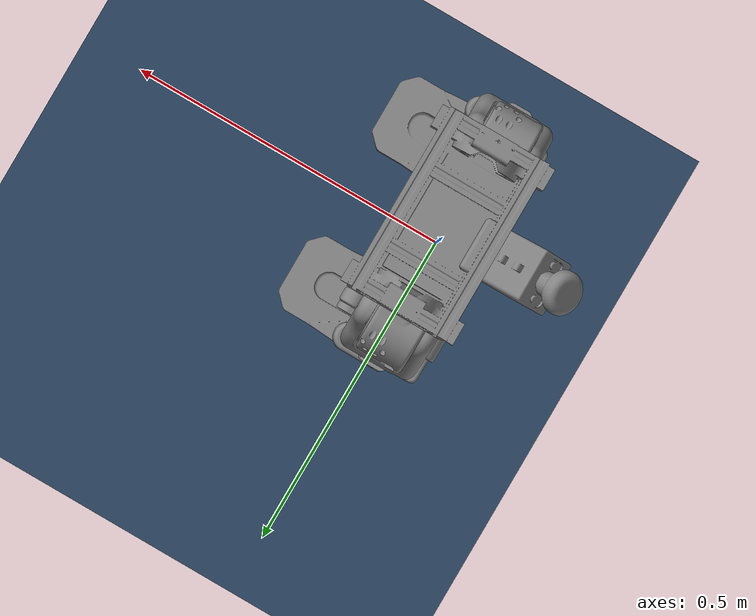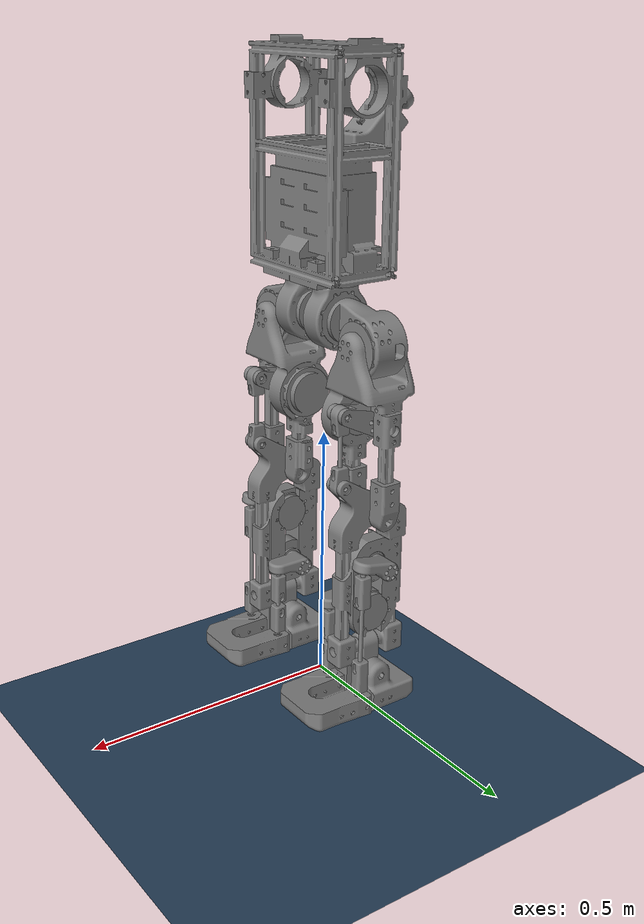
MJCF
<?xml version="1.0"?>
<mujoco model="robonex_edu scene">
  <include file="robonex_limits.xml"/>

  <statistic center="0 0 0.6" extent="1.2"/>

  <visual>
    <headlight diffuse="0.6 0.6 0.6" ambient="0.3 0.3 0.3" specular="0 0 0"/>
    <rgba haze="0.15 0.25 0.35 1"/>
    <global azimuth="140" elevation="-20"/>
  </visual>

  <asset>
    <texture type="skybox" builtin="gradient" rgb1="0.3 0.5 0.7" rgb2="0 0 0" width="512" height="3072"/>
    <texture type="2d" name="groundplane" builtin="checker" mark="edge" rgb1="0.2 0.3 0.4" rgb2="0.1 0.2 0.3"
      markrgb="0.8 0.8 0.8" width="300" height="300"/>
    <material name="groundplane" texture="groundplane" texuniform="true" texrepeat="5 5" reflectance="0.2"/>
  </asset>

  <worldbody>
    <light pos="0 0 3" dir="0 0 -1" directional="true"/>
    <geom name="floor" size="0 0 0.05" type="plane" material="groundplane" condim="3" contype="1" conaffinity="1" friction="0.6 0.6 0.001" solref="0.002 1" solimp="0.99 0.9999 0.0001"/>
  </worldbody>
</mujoco>

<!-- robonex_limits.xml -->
<mujoco model="robonex_edu">
  <compiler angle="radian" meshdir="../../../meshes" autolimits="true"/>
  <option timestep="0.001" integrator="implicitfast" cone="elliptic" impratio="10"/>

  <default>
    <joint damping="0.01" armature="0"/>
    <default class="passive">
      <joint damping="0.01" armature="0"/>
    </default>
    <default class="act">
      <joint armature="0"/>
    </default>
    <default class="visual">
      <geom group="2" contype="0" conaffinity="0" density="0"/>
    </default>
    <default class="collision">
      <geom group="3" contype="1" conaffinity="1" condim="3" density="0" rgba="0.6 0.6 0.6 0.4" solref="0.002 1" solimp="0.99 0.9999 0.0001"/>
    </default>
    <default class="motor">
      <position kp="40" kv="2"/>
    </default>
  </default>

  <asset>
    <mesh name="base_link" file="base_link.stl" scale="0.001 0.001 0.001"/>
    <mesh name="l_ankle_coupler_link_a" file="l_ankle_coupler_link_a.stl" scale="0.001 0.001 0.001"/>
    <mesh name="l_ankle_coupler_link_b" file="l_ankle_coupler_link_b.stl" scale="0.001 0.001 0.001"/>
    <mesh name="l_ankle_crank_link_a" file="l_ankle_crank_link_a.stl" scale="0.001 0.001 0.001"/>
    <mesh name="l_ankle_crank_link_b" file="l_ankle_crank_link_b.stl" scale="0.001 0.001 0.001"/>
    <mesh name="l_ankle_link" file="l_ankle_link.stl" scale="0.001 0.001 0.001"/>
    <mesh name="l_foot" file="l_foot.stl" scale="0.001 0.001 0.001"/>
    <mesh name="l_hip_pitch_link" file="l_hip_pitch_link.stl" scale="0.001 0.001 0.001"/>
    <mesh name="l_hip_roll_link" file="l_hip_roll_link.stl" scale="0.001 0.001 0.001"/>
    <mesh name="l_hip_yaw_link" file="l_hip_yaw_link.stl" scale="0.001 0.001 0.001"/>
    <mesh name="l_knee_coupler_link" file="l_knee_coupler_link.stl" scale="0.001 0.001 0.001"/>
    <mesh name="l_knee_crank_link" file="l_knee_crank_link.stl" scale="0.001 0.001 0.001"/>
    <mesh name="l_knee_link" file="l_knee_link.stl" scale="0.001 0.001 0.001"/>
    <mesh name="r_ankle_coupler_link_a" file="r_ankle_coupler_link_a.stl" scale="0.001 0.001 0.001"/>
    <mesh name="r_ankle_coupler_link_b" file="r_ankle_coupler_link_b.stl" scale="0.001 0.001 0.001"/>
    <mesh name="r_ankle_crank_link_a" file="r_ankle_crank_link_a.stl" scale="0.001 0.001 0.001"/>
    <mesh name="r_ankle_crank_link_b" file="r_ankle_crank_link_b.stl" scale="0.001 0.001 0.001"/>
    <mesh name="r_ankle_link" file="r_ankle_link.stl" scale="0.001 0.001 0.001"/>
    <mesh name="r_foot" file="r_foot.stl" scale="0.001 0.001 0.001"/>
    <mesh name="r_hip_pitch_link" file="r_hip_pitch_link.stl" scale="0.001 0.001 0.001"/>
    <mesh name="r_hip_roll_link" file="r_hip_roll_link.stl" scale="0.001 0.001 0.001"/>
    <mesh name="r_hip_yaw_link" file="r_hip_yaw_link.stl" scale="0.001 0.001 0.001"/>
    <mesh name="r_knee_coupler_link" file="r_knee_coupler_link.stl" scale="0.001 0.001 0.001"/>
    <mesh name="r_knee_crank_link" file="r_knee_crank_link.stl" scale="0.001 0.001 0.001"/>
    <mesh name="r_knee_link" file="r_knee_link.stl" scale="0.001 0.001 0.001"/>
    <mesh name="rs02_l_ankle_a" file="rs02_l_ankle_a.stl" scale="0.001 0.001 0.001"/>
    <mesh name="rs02_l_ankle_b" file="rs02_l_ankle_b.stl" scale="0.001 0.001 0.001"/>
    <mesh name="rs02_l_hip_yaw" file="rs02_l_hip_yaw.stl" scale="0.001 0.001 0.001"/>
    <mesh name="rs02_r_ankle_a" file="rs02_r_ankle_a.stl" scale="0.001 0.001 0.001"/>
    <mesh name="rs02_r_ankle_b" file="rs02_r_ankle_b.stl" scale="0.001 0.001 0.001"/>
    <mesh name="rs02_r_hip_yaw" file="rs02_r_hip_yaw.stl" scale="0.001 0.001 0.001"/>
    <mesh name="rs03_l_hip_pitch" file="rs03_l_hip_pitch.stl" scale="0.001 0.001 0.001"/>
    <mesh name="rs03_l_hip_roll" file="rs03_l_hip_roll.stl" scale="0.001 0.001 0.001"/>
    <mesh name="rs03_l_knee" file="rs03_l_knee.stl" scale="0.001 0.001 0.001"/>
    <mesh name="rs03_r_hip_pitch" file="rs03_r_hip_pitch.stl" scale="0.001 0.001 0.001"/>
    <mesh name="rs03_r_hip_roll" file="rs03_r_hip_roll.stl" scale="0.001 0.001 0.001"/>
    <mesh name="rs03_r_knee" file="rs03_r_knee.stl" scale="0.001 0.001 0.001"/>
  </asset>

  <worldbody>
    <body name="base_link" pos="0 0 0.9549">
      <freejoint name="root"/>
      <inertial pos="0.001029 8e-06 -0.014494" mass="7.56218" fullinertia="0.10985951 0.09654826 0.04686643 1.168e-05 0.00911344 -4.178e-05"/>
      <geom type="mesh" mesh="base_link" pos="0 0 0" class="visual"/>
      <geom type="mesh" mesh="base_link" pos="0 0 0" class="collision"/>
      <geom type="mesh" mesh="rs02_l_hip_yaw" pos="0 0 0" class="visual"/>
      <geom type="mesh" mesh="rs02_l_hip_yaw" pos="0 0 0" class="collision"/>
      <geom type="mesh" mesh="rs02_r_hip_yaw" pos="0 0 0" class="visual"/>
      <geom type="mesh" mesh="rs02_r_hip_yaw" pos="0 0 0" class="collision"/>
      <body name="l_hip_yaw_link" pos="0.009587 0.043073 -0.157994">
        <joint name="l_hip_yaw_joint" type="hinge" axis="0 0 1" range="-1.65806 1.65806" armature="0.0042" frictionloss="0" damping="0" class="act"/>
        <inertial pos="-3.5e-05 0.001434 -0.060089" mass="1.05799" fullinertia="0.0012034 0.00167068 0.00111414 -7.1e-07 -7.2e-07 1.735e-05"/>
        <geom type="mesh" mesh="l_hip_yaw_link" pos="0 0 0" class="visual"/>
        <geom type="mesh" mesh="l_hip_yaw_link" pos="0 0 0" class="collision"/>
        <geom type="mesh" mesh="rs03_l_hip_pitch" pos="0 0 0" class="visual"/>
        <geom type="mesh" mesh="rs03_l_hip_pitch" pos="0 0 0" class="collision"/>
        <body name="l_hip_pitch_link" pos="2e-06 0.02575 -0.062">
          <joint name="l_hip_pitch_joint" type="hinge" axis="0 -1 0" range="-1.74533 1.74533" armature="0.02" frictionloss="0" damping="0" class="act"/>
          <inertial pos="-0.005442 0.060333 -0.031597" mass="1.18163" fullinertia="0.00199283 0.00152652 0.00145115 2.217e-05 -1.266e-05 0.0001316"/>
          <geom type="mesh" mesh="l_hip_pitch_link" pos="0 0 0" class="visual"/>
          <geom type="mesh" mesh="l_hip_pitch_link" pos="0 0 0" class="collision"/>
          <geom type="mesh" mesh="rs03_l_hip_roll" pos="0 0 0" class="visual"/>
          <geom type="mesh" mesh="rs03_l_hip_roll" pos="0 0 0" class="collision"/>
          <body name="l_hip_roll_link" pos="0.0225 0.062699 -0.034">
            <joint name="l_hip_roll_joint" type="hinge" axis="-1 0 0" range="-2.14676 0.453786" armature="0.02" frictionloss="0" damping="0" class="act"/>
            <inertial pos="-0.034699 -0.027552 -0.132599" mass="1.7079" fullinertia="0.01098964 0.00975951 0.00409591 -1.176e-05 -1.512e-05 -0.00025731"/>
            <geom type="mesh" mesh="l_hip_roll_link" pos="0 0 0" class="visual"/>
            <geom type="mesh" mesh="l_hip_roll_link" pos="0 0 0" class="collision"/>
            <geom type="mesh" mesh="rs03_l_knee" pos="0 0 0" class="visual"/>
            <geom type="mesh" mesh="rs03_l_knee" pos="0 0 0" class="collision"/>
            <body name="l_knee_link" pos="-0.034799 0.0029 -0.312746">
              <joint name="l_knee_joint" type="hinge" axis="0 -1 0" range="-3.14159 3.14159" class="passive"/>
              <inertial pos="-0.00084 -7.5e-05 -0.127387" mass="1.48699" fullinertia="0.0102151 0.01165071 0.0018731 -1.42e-06 -0.00032066 -2.783e-05"/>
              <geom type="mesh" mesh="l_knee_link" pos="0 0 0" class="visual"/>
              <geom type="mesh" mesh="l_knee_link" pos="0 0 0" class="collision"/>
              <geom type="mesh" mesh="rs02_l_ankle_a" pos="0 0 0" class="visual"/>
              <geom type="mesh" mesh="rs02_l_ankle_a" pos="0 0 0" class="collision"/>
              <geom type="mesh" mesh="rs02_l_ankle_b" pos="0 0 0" class="visual"/>
              <geom type="mesh" mesh="rs02_l_ankle_b" pos="0 0 0" class="collision"/>
              <body name="l_ankle_crank_link_a" pos="-0.001915 0.0229 -0.09521">
                <joint name="l_ankle_upper_joint" type="hinge" axis="0 -1 0" range="-0.610865 0.575959" armature="0.0042" frictionloss="0" damping="0" class="act"/>
                <inertial pos="0.02027 0.024517 0.008498" mass="0.097699" fullinertia="2.72e-05 6.048e-05 6.413e-05 -3.53e-06 -1.569e-05 -1.5e-06"/>
                <geom type="mesh" mesh="l_ankle_crank_link_a" pos="0 0 0" class="visual"/>
                <geom type="mesh" mesh="l_ankle_crank_link_a" pos="0 0 0" class="collision"/>
                <body name="l_ankle_coupler_link_b" pos="0.048892 0.0263 0.010482">
                  <joint name="l_ankle_coupler_joint_b_x" type="hinge" axis="1 0 0" range="-0.261799 0.261799" limited="true" solreflimit="0.004 1" solimplimit="0.99 0.9999 0.0001" class="passive"/>
                  <joint name="l_ankle_coupler_joint_b_y" type="hinge" axis="0 1 0" class="passive"/>
                  <joint name="l_ankle_coupler_joint_b_z" type="hinge" axis="0 0 1" range="-0.261799 0.261799" limited="true" solreflimit="0.004 1" solimplimit="0.99 0.9999 0.0001" class="passive"/>
                  <inertial pos="0.001566 2e-06 -0.128991" mass="0.0954" fullinertia="0.00073964 0.0007393 8.39e-06 0 8.88e-06 1e-08"/>
                  <geom type="mesh" mesh="l_ankle_coupler_link_b" pos="0 0 0" class="visual"/>
                  <geom type="mesh" mesh="l_ankle_coupler_link_b" pos="0 0 0" class="collision"/>
                </body>
              </body>
              <body name="l_ankle_crank_link_b" pos="-0.001915 -0.0231 -0.19621">
                <joint name="l_ankle_lower_joint" type="hinge" axis="0 1 0" range="-0.610865 0.575959" armature="0.0042" frictionloss="0" damping="0" class="act"/>
                <inertial pos="0.021459 -0.024511 0.004277" mass="0.0977" fullinertia="2.258e-05 6.038e-05 6.874e-05 3.75e-06 -7.25e-06 7.5e-07"/>
                <geom type="mesh" mesh="l_ankle_crank_link_b" pos="0 0 0" class="visual"/>
                <geom type="mesh" mesh="l_ankle_crank_link_b" pos="0 0 0" class="collision"/>
                <body name="l_ankle_coupler_link_a" pos="0.049971 -0.025702 0.000486">
                  <joint name="l_ankle_coupler_joint_a_x" type="hinge" axis="1 0 0" range="-0.261799 0.261799" limited="true" solreflimit="0.004 1" solimplimit="0.99 0.9999 0.0001" class="passive"/>
                  <joint name="l_ankle_coupler_joint_a_y" type="hinge" axis="0 1 0" class="passive"/>
                  <joint name="l_ankle_coupler_joint_a_z" type="hinge" axis="0 0 1" range="-0.261799 0.261799" limited="true" solreflimit="0.004 1" solimplimit="0.99 0.9999 0.0001" class="passive"/>
                  <inertial pos="0.001031 -0.000197 -0.073492" mass="0.0618" fullinertia="0.00010098 0.00010065 5.7e-06 0 1.33e-06 -2.6e-07"/>
                  <geom type="mesh" mesh="l_ankle_coupler_link_a" pos="0 0 0" class="visual"/>
                  <geom type="mesh" mesh="l_ankle_coupler_link_a" pos="0 0 0" class="collision"/>
                </body>
              </body>
              <body name="l_ankle_link" pos="0.000114 -2e-06 -0.26671">
                <joint name="l_ankle_roll_joint" type="hinge" axis="1 0 0" range="-3.14159 3.14159" class="passive"/>
                <inertial pos="0 1e-06 -0.024999" mass="0.106" fullinertia="7.201e-05 7.201e-05 2.63e-05 0 0 0"/>
                <geom type="mesh" mesh="l_ankle_link" pos="0 0 0" class="visual"/>
                <geom type="mesh" mesh="l_ankle_link" pos="0 0 0" class="collision"/>
                <body name="l_foot" pos="-4e-06 0.000276 -0.049999">
                  <joint name="l_ankle_pitch_joint" type="hinge" axis="0 -1 0" range="-3.14159 3.14159" class="passive"/>
                  <inertial pos="0.03641 -0.000198 -0.039754" mass="0.833001" fullinertia="0.00152051 0.00436638 0.00529529 2.25e-06 0.00016013 -2.66e-06"/>
                  <geom type="mesh" mesh="l_foot" pos="0 0 0" class="visual"/>
                  <geom type="mesh" mesh="l_foot" pos="0 0 0" class="collision" friction="0.6 0.6 0.001"/>
                </body>
              </body>
            </body>
            <body name="l_knee_crank_link" pos="-0.034801 -0.0286 -0.13775">
              <joint name="l_knee_pitch_joint" type="hinge" axis="0 -1 0" range="-1.36136 0.261799" armature="0.02" frictionloss="0" damping="0" class="act"/>
              <inertial pos="0.019335 0.02899 0.007124" mass="0.15261" fullinertia="6.247e-05 0.00012321 0.00012195 -8.15e-06 -2.537e-05 -3e-06"/>
              <geom type="mesh" mesh="l_knee_crank_link" pos="0 0 0" class="visual"/>
              <geom type="mesh" mesh="l_knee_crank_link" pos="0 0 0" class="collision"/>
              <body name="l_knee_coupler_link" pos="0.065782 0.0315 0.023944">
                <joint name="l_knee_coupler_joint_a" type="hinge" axis="0 -1 0" range="-3.14159 3.14159" class="passive"/>
                <inertial pos="-3e-06 0 -0.067002" mass="0.027601" fullinertia="8.761e-05 8.882e-05 2.91e-06 0 0 0"/>
                <geom type="mesh" mesh="l_knee_coupler_link" pos="0 0 0" class="visual"/>
                <geom type="mesh" mesh="l_knee_coupler_link" pos="0 0 0" class="collision"/>
              </body>
            </body>
          </body>
        </body>
      </body>
      <body name="r_hip_yaw_link" pos="0.009587 -0.042927 -0.157994">
        <joint name="r_hip_yaw_joint" type="hinge" axis="0 0 1" range="-1.65806 1.65806" armature="0.0042" frictionloss="0" damping="0" class="act"/>
        <inertial pos="3.7e-05 -0.001434 -0.060089" mass="1.05799" fullinertia="0.0012034 0.00167069 0.00111414 -7.1e-07 7.2e-07 -1.735e-05"/>
        <geom type="mesh" mesh="r_hip_yaw_link" pos="0 0 0" class="visual"/>
        <geom type="mesh" mesh="r_hip_yaw_link" pos="0 0 0" class="collision"/>
        <geom type="mesh" mesh="rs03_r_hip_pitch" pos="0 0 0" class="visual"/>
        <geom type="mesh" mesh="rs03_r_hip_pitch" pos="0 0 0" class="collision"/>
        <body name="r_hip_pitch_link" pos="1e-06 -0.02575 -0.062">
          <joint name="r_hip_pitch_joint" type="hinge" axis="0 1 0" range="-1.74533 1.74533" armature="0.02" frictionloss="0" damping="0" class="act"/>
          <inertial pos="-0.005441 -0.060269 -0.031597" mass="1.18162" fullinertia="0.00199244 0.0015265 0.00145077 -2.103e-05 -1.266e-05 -0.00013011"/>
          <geom type="mesh" mesh="r_hip_pitch_link" pos="0 0 0" class="visual"/>
          <geom type="mesh" mesh="r_hip_pitch_link" pos="0 0 0" class="collision"/>
          <geom type="mesh" mesh="rs03_r_hip_roll" pos="0 0 0" class="visual"/>
          <geom type="mesh" mesh="rs03_r_hip_roll" pos="0 0 0" class="collision"/>
          <body name="r_hip_roll_link" pos="0.022501 -0.0627 -0.034">
            <joint name="r_hip_roll_joint" type="hinge" axis="-1 0 0" range="-0.453786 2.14676" armature="0.02" frictionloss="0" damping="0" class="act"/>
            <inertial pos="-0.034699 0.027552 -0.132644" mass="1.70788" fullinertia="0.01098902 0.00976012 0.00409465 1.171e-05 -1.643e-05 0.00026012"/>
            <geom type="mesh" mesh="r_hip_roll_link" pos="0 0 0" class="visual"/>
            <geom type="mesh" mesh="r_hip_roll_link" pos="0 0 0" class="collision"/>
            <geom type="mesh" mesh="rs03_r_knee" pos="0 0 0" class="visual"/>
            <geom type="mesh" mesh="rs03_r_knee" pos="0 0 0" class="collision"/>
            <body name="r_knee_link" pos="-0.034799 -0.002899 -0.312746">
              <joint name="r_knee_joint" type="hinge" axis="0 1 0" range="-3.14159 3.14159" class="passive"/>
              <inertial pos="-0.000866 -1e-06 -0.12742" mass="1.48699" fullinertia="0.01021209 0.01164668 0.00187201 -5e-07 -0.00032231 2.312e-05"/>
              <geom type="mesh" mesh="r_knee_link" pos="0 0 0" class="visual"/>
              <geom type="mesh" mesh="r_knee_link" pos="0 0 0" class="collision"/>
              <geom type="mesh" mesh="rs02_r_ankle_a" pos="0 0 0" class="visual"/>
              <geom type="mesh" mesh="rs02_r_ankle_a" pos="0 0 0" class="collision"/>
              <geom type="mesh" mesh="rs02_r_ankle_b" pos="0 0 0" class="visual"/>
              <geom type="mesh" mesh="rs02_r_ankle_b" pos="0 0 0" class="collision"/>
              <body name="r_ankle_crank_link_a" pos="-0.001936 0.023 -0.196208">
                <joint name="r_ankle_lower_joint" type="hinge" axis="0 -1 0" range="-0.575959 0.610865" armature="0.0042" frictionloss="0" damping="0" class="act"/>
                <inertial pos="0.02156 0.024517 0.004268" mass="0.097699" fullinertia="2.252e-05 6.047e-05 6.881e-05 -3.76e-06 -7.2e-06 -7.4e-07"/>
                <geom type="mesh" mesh="r_ankle_crank_link_a" pos="0 0 0" class="visual"/>
                <geom type="mesh" mesh="r_ankle_crank_link_a" pos="0 0 0" class="collision"/>
                <body name="r_ankle_coupler_link_a" pos="0.050001 0.0263 0.000484">
                  <joint name="r_ankle_coupler_joint_a_x" type="hinge" axis="1 0 0" range="-0.261799 0.261799" limited="true" solreflimit="0.004 1" solimplimit="0.99 0.9999 0.0001" class="passive"/>
                  <joint name="r_ankle_coupler_joint_a_y" type="hinge" axis="0 1 0" class="passive"/>
                  <joint name="r_ankle_coupler_joint_a_z" type="hinge" axis="0 0 1" range="-0.261799 0.261799" limited="true" solreflimit="0.004 1" solimplimit="0.99 0.9999 0.0001" class="passive"/>
                  <inertial pos="0.001024 -5e-05 -0.073492" mass="0.0618" fullinertia="0.00010064 0.000101 5.69e-06 -1e-08 1.32e-06 -6e-08"/>
                  <geom type="mesh" mesh="r_ankle_coupler_link_a" pos="0 0 0" class="visual"/>
                  <geom type="mesh" mesh="r_ankle_coupler_link_a" pos="0 0 0" class="collision"/>
                </body>
              </body>
              <body name="r_ankle_crank_link_b" pos="-0.001936 -0.023 -0.095208">
                <joint name="r_ankle_upper_joint" type="hinge" axis="0 1 0" range="-0.575959 0.610865" armature="0.0042" frictionloss="0" damping="0" class="act"/>
                <inertial pos="0.020168 -0.024511 0.008483" mass="0.0977" fullinertia="2.727e-05 6.04e-05 6.405e-05 3.52e-06 -1.571e-05 1.49e-06"/>
                <geom type="mesh" mesh="r_ankle_crank_link_b" pos="0 0 0" class="visual"/>
                <geom type="mesh" mesh="r_ankle_crank_link_b" pos="0 0 0" class="collision"/>
                <body name="r_ankle_coupler_link_b" pos="0.048862 -0.025702 0.010477">
                  <joint name="r_ankle_coupler_joint_b_x" type="hinge" axis="1 0 0" range="-0.261799 0.261799" limited="true" solreflimit="0.004 1" solimplimit="0.99 0.9999 0.0001" class="passive"/>
                  <joint name="r_ankle_coupler_joint_b_y" type="hinge" axis="0 1 0" class="passive"/>
                  <joint name="r_ankle_coupler_joint_b_z" type="hinge" axis="0 0 1" range="-0.261799 0.261799" limited="true" solreflimit="0.004 1" solimplimit="0.99 0.9999 0.0001" class="passive"/>
                  <inertial pos="0.001594 -0.000249 -0.12899" mass="0.0954" fullinertia="0.00073964 0.0007393 8.39e-06 2e-08 9.04e-06 -1.41e-06"/>
                  <geom type="mesh" mesh="r_ankle_coupler_link_b" pos="0 0 0" class="visual"/>
                  <geom type="mesh" mesh="r_ankle_coupler_link_b" pos="0 0 0" class="collision"/>
                </body>
              </body>
              <body name="r_ankle_link" pos="0.000114 -3e-06 -0.26671">
                <joint name="r_ankle_roll_joint" type="hinge" axis="1 0 0" range="-3.14159 3.14159" class="passive"/>
                <inertial pos="0 3e-06 -0.024999" mass="0.106" fullinertia="7.201e-05 7.201e-05 2.629e-05 0 0 0"/>
                <geom type="mesh" mesh="r_ankle_link" pos="0 0 0" class="visual"/>
                <geom type="mesh" mesh="r_ankle_link" pos="0 0 0" class="collision"/>
                <body name="r_foot" pos="-4e-06 0 -0.05">
                  <joint name="r_ankle_pitch_joint" type="hinge" axis="0 -1 0" range="-3.14159 3.14159" class="passive"/>
                  <inertial pos="0.036409 7.6e-05 -0.039753" mass="0.833001" fullinertia="0.00152052 0.00436638 0.00529528 2.51e-06 0.00016016 -2.68e-06"/>
                  <geom type="mesh" mesh="r_foot" pos="0 0 0" class="visual"/>
                  <geom type="mesh" mesh="r_foot" pos="0 0 0" class="collision" friction="0.6 0.6 0.001"/>
                </body>
              </body>
            </body>
            <body name="r_knee_crank_link" pos="-0.034801 0.028601 -0.137749">
              <joint name="r_knee_pitch_joint" type="hinge" axis="0 1 0" range="-0.261799 1.36136" armature="0.02" frictionloss="0" damping="0" class="act"/>
              <inertial pos="0.019335 -0.02899 0.007124" mass="0.15261" fullinertia="6.247e-05 0.00012321 0.00012195 8.15e-06 -2.537e-05 3e-06"/>
              <geom type="mesh" mesh="r_knee_crank_link" pos="0 0 0" class="visual"/>
              <geom type="mesh" mesh="r_knee_crank_link" pos="0 0 0" class="collision"/>
              <body name="r_knee_coupler_link" pos="0.065782 -0.0315 0.023943">
                <joint name="r_knee_coupler_joint_a" type="hinge" axis="0 -1 0" range="-3.14159 3.14159" class="passive"/>
                <inertial pos="-3e-06 0 -0.067002" mass="0.027601" fullinertia="8.761e-05 8.882e-05 2.91e-06 0 0 0"/>
                <geom type="mesh" mesh="r_knee_coupler_link" pos="0 0 0" class="visual"/>
                <geom type="mesh" mesh="r_knee_coupler_link" pos="0 0 0" class="collision"/>
              </body>
            </body>
          </body>
        </body>
      </body>
    </body>
  </worldbody>

  <equality>
    <connect name="l_knee_coupler_joint_b_0" body1="l_knee_coupler_link" body2="l_knee_link" anchor="0 -0.01 -0.134" solref="0.004 1" solimp="0.99 0.9999 0.0001"/>
    <connect name="l_knee_coupler_joint_b_1" body1="l_knee_coupler_link" body2="l_knee_link" anchor="0 0.01 -0.134" solref="0.004 1" solimp="0.99 0.9999 0.0001"/>
    <connect name="r_knee_coupler_joint_b_0" body1="r_knee_coupler_link" body2="r_knee_link" anchor="0 0.01 -0.134" solref="0.004 1" solimp="0.99 0.9999 0.0001"/>
    <connect name="r_knee_coupler_joint_b_1" body1="r_knee_coupler_link" body2="r_knee_link" anchor="0 -0.01 -0.134" solref="0.004 1" solimp="0.99 0.9999 0.0001"/>
    <connect name="l_ankle_ball_c" body1="l_ankle_coupler_link_a" body2="l_foot" anchor="0.002064 -0.000394 -0.146985" solref="0.004 1" solimp="0.99 0.9999 0.0001"/>
    <connect name="l_ankle_ball_d" body1="l_ankle_coupler_link_b" body2="l_foot" anchor="0.003133 4e-06 -0.257981" solref="0.004 1" solimp="0.99 0.9999 0.0001"/>
    <connect name="r_ankle_ball_c" body1="r_ankle_coupler_link_a" body2="r_foot" anchor="0.002049 -0.0001 -0.146986" solref="0.004 1" solimp="0.99 0.9999 0.0001"/>
    <connect name="r_ankle_ball_d" body1="r_ankle_coupler_link_b" body2="r_foot" anchor="0.003188 -0.000498 -0.257979" solref="0.004 1" solimp="0.99 0.9999 0.0001"/>
  </equality>

  <contact>
    <exclude body1="base_link" body2="l_hip_pitch_link"/>
    <exclude body1="base_link" body2="l_hip_yaw_link"/>
    <exclude body1="base_link" body2="r_hip_pitch_link"/>
    <exclude body1="base_link" body2="r_hip_yaw_link"/>
    <exclude body1="l_ankle_coupler_link_a" body2="l_ankle_coupler_link_b"/>
    <exclude body1="l_ankle_coupler_link_a" body2="l_ankle_crank_link_b"/>
    <exclude body1="l_ankle_coupler_link_a" body2="l_ankle_link"/>
    <exclude body1="l_ankle_coupler_link_a" body2="l_foot"/>
    <exclude body1="l_ankle_coupler_link_a" body2="l_knee_link"/>
    <exclude body1="l_ankle_coupler_link_b" body2="l_ankle_crank_link_a"/>
    <exclude body1="l_ankle_coupler_link_b" body2="l_ankle_link"/>
    <exclude body1="l_ankle_coupler_link_b" body2="l_foot"/>
    <exclude body1="l_ankle_coupler_link_b" body2="l_knee_link"/>
    <exclude body1="l_ankle_crank_link_a" body2="l_ankle_crank_link_b"/>
    <exclude body1="l_ankle_crank_link_a" body2="l_ankle_link"/>
    <exclude body1="l_ankle_crank_link_a" body2="l_foot"/>
    <exclude body1="l_ankle_crank_link_a" body2="l_hip_roll_link"/>
    <exclude body1="l_ankle_crank_link_a" body2="l_knee_coupler_link"/>
    <exclude body1="l_ankle_crank_link_a" body2="l_knee_link"/>
    <exclude body1="l_ankle_crank_link_b" body2="l_ankle_link"/>
    <exclude body1="l_ankle_crank_link_b" body2="l_foot"/>
    <exclude body1="l_ankle_crank_link_b" body2="l_hip_roll_link"/>
    <exclude body1="l_ankle_crank_link_b" body2="l_knee_coupler_link"/>
    <exclude body1="l_ankle_crank_link_b" body2="l_knee_link"/>
    <exclude body1="l_ankle_link" body2="l_foot"/>
    <exclude body1="l_ankle_link" body2="l_hip_roll_link"/>
    <exclude body1="l_ankle_link" body2="l_knee_coupler_link"/>
    <exclude body1="l_ankle_link" body2="l_knee_link"/>
    <exclude body1="l_foot" body2="l_knee_link"/>
    <exclude body1="l_hip_pitch_link" body2="l_hip_roll_link"/>
    <exclude body1="l_hip_pitch_link" body2="l_hip_yaw_link"/>
    <exclude body1="l_hip_pitch_link" body2="l_knee_crank_link"/>
    <exclude body1="l_hip_pitch_link" body2="l_knee_link"/>
    <exclude body1="l_hip_roll_link" body2="l_hip_yaw_link"/>
    <exclude body1="l_hip_roll_link" body2="l_knee_coupler_link"/>
    <exclude body1="l_hip_roll_link" body2="l_knee_crank_link"/>
    <exclude body1="l_hip_roll_link" body2="l_knee_link"/>
    <exclude body1="l_hip_yaw_link" body2="r_hip_yaw_link"/>
    <exclude body1="l_knee_coupler_link" body2="l_knee_crank_link"/>
    <exclude body1="l_knee_coupler_link" body2="l_knee_link"/>
    <exclude body1="l_knee_crank_link" body2="l_knee_link"/>
    <exclude body1="r_ankle_coupler_link_a" body2="r_ankle_coupler_link_b"/>
    <exclude body1="r_ankle_coupler_link_a" body2="r_ankle_crank_link_a"/>
    <exclude body1="r_ankle_coupler_link_a" body2="r_ankle_link"/>
    <exclude body1="r_ankle_coupler_link_a" body2="r_foot"/>
    <exclude body1="r_ankle_coupler_link_a" body2="r_knee_link"/>
    <exclude body1="r_ankle_coupler_link_b" body2="r_ankle_crank_link_b"/>
    <exclude body1="r_ankle_coupler_link_b" body2="r_ankle_link"/>
    <exclude body1="r_ankle_coupler_link_b" body2="r_foot"/>
    <exclude body1="r_ankle_coupler_link_b" body2="r_knee_link"/>
    <exclude body1="r_ankle_crank_link_a" body2="r_ankle_crank_link_b"/>
    <exclude body1="r_ankle_crank_link_a" body2="r_ankle_link"/>
    <exclude body1="r_ankle_crank_link_a" body2="r_foot"/>
    <exclude body1="r_ankle_crank_link_a" body2="r_hip_roll_link"/>
    <exclude body1="r_ankle_crank_link_a" body2="r_knee_coupler_link"/>
    <exclude body1="r_ankle_crank_link_a" body2="r_knee_link"/>
    <exclude body1="r_ankle_crank_link_b" body2="r_ankle_link"/>
    <exclude body1="r_ankle_crank_link_b" body2="r_foot"/>
    <exclude body1="r_ankle_crank_link_b" body2="r_hip_roll_link"/>
    <exclude body1="r_ankle_crank_link_b" body2="r_knee_coupler_link"/>
    <exclude body1="r_ankle_crank_link_b" body2="r_knee_link"/>
    <exclude body1="r_ankle_link" body2="r_foot"/>
    <exclude body1="r_ankle_link" body2="r_hip_roll_link"/>
    <exclude body1="r_ankle_link" body2="r_knee_coupler_link"/>
    <exclude body1="r_ankle_link" body2="r_knee_link"/>
    <exclude body1="r_foot" body2="r_knee_link"/>
    <exclude body1="r_hip_pitch_link" body2="r_hip_roll_link"/>
    <exclude body1="r_hip_pitch_link" body2="r_hip_yaw_link"/>
    <exclude body1="r_hip_pitch_link" body2="r_knee_crank_link"/>
    <exclude body1="r_hip_pitch_link" body2="r_knee_link"/>
    <exclude body1="r_hip_roll_link" body2="r_hip_yaw_link"/>
    <exclude body1="r_hip_roll_link" body2="r_knee_coupler_link"/>
    <exclude body1="r_hip_roll_link" body2="r_knee_crank_link"/>
    <exclude body1="r_hip_roll_link" body2="r_knee_link"/>
    <exclude body1="r_knee_coupler_link" body2="r_knee_crank_link"/>
    <exclude body1="r_knee_coupler_link" body2="r_knee_link"/>
    <exclude body1="r_knee_crank_link" body2="r_knee_link"/>
  </contact>

  <actuator>
    <position name="l_hip_yaw" joint="l_hip_yaw_joint" ctrlrange="-1.65806 1.65806" forcerange="-17 17" kp="100" kv="2" class="motor"/>
    <position name="l_hip_pitch" joint="l_hip_pitch_joint" ctrlrange="-1.74533 1.74533" forcerange="-60 60" kp="100" kv="2" class="motor"/>
    <position name="l_hip_roll" joint="l_hip_roll_joint" ctrlrange="-2.14676 0.453786" forcerange="-60 60" kp="100" kv="2" class="motor"/>
    <position name="l_knee_pitch" joint="l_knee_pitch_joint" ctrlrange="-1.36136 0.261799" forcerange="-60 60" kp="150" kv="4" class="motor"/>
    <position name="l_ankle_upper" joint="l_ankle_upper_joint" ctrlrange="-0.610865 0.575959" forcerange="-17 17" kp="40" kv="2" class="motor"/>
    <position name="l_ankle_lower" joint="l_ankle_lower_joint" ctrlrange="-0.610865 0.575959" forcerange="-17 17" kp="40" kv="2" class="motor"/>
    <position name="r_hip_yaw" joint="r_hip_yaw_joint" ctrlrange="-1.65806 1.65806" forcerange="-17 17" kp="100" kv="2" class="motor"/>
    <position name="r_hip_pitch" joint="r_hip_pitch_joint" ctrlrange="-1.74533 1.74533" forcerange="-60 60" kp="100" kv="2" class="motor"/>
    <position name="r_hip_roll" joint="r_hip_roll_joint" ctrlrange="-0.453786 2.14676" forcerange="-60 60" kp="100" kv="2" class="motor"/>
    <position name="r_knee_pitch" joint="r_knee_pitch_joint" ctrlrange="-0.261799 1.36136" forcerange="-60 60" kp="150" kv="4" class="motor"/>
    <position name="r_ankle_lower" joint="r_ankle_lower_joint" ctrlrange="-0.575959 0.610865" forcerange="-17 17" kp="40" kv="2" class="motor"/>
    <position name="r_ankle_upper" joint="r_ankle_upper_joint" ctrlrange="-0.575959 0.610865" forcerange="-17 17" kp="40" kv="2" class="motor"/>
  </actuator>

  <sensor>
    <actuatorfrc name="l_hip_yaw_trq" actuator="l_hip_yaw"/>
    <actuatorfrc name="l_hip_pitch_trq" actuator="l_hip_pitch"/>
    <actuatorfrc name="l_hip_roll_trq" actuator="l_hip_roll"/>
    <actuatorfrc name="l_knee_pitch_trq" actuator="l_knee_pitch"/>
    <actuatorfrc name="l_ankle_upper_trq" actuator="l_ankle_upper"/>
    <actuatorfrc name="l_ankle_lower_trq" actuator="l_ankle_lower"/>
    <actuatorfrc name="r_hip_yaw_trq" actuator="r_hip_yaw"/>
    <actuatorfrc name="r_hip_pitch_trq" actuator="r_hip_pitch"/>
    <actuatorfrc name="r_hip_roll_trq" actuator="r_hip_roll"/>
    <actuatorfrc name="r_knee_pitch_trq" actuator="r_knee_pitch"/>
    <actuatorfrc name="r_ankle_lower_trq" actuator="r_ankle_lower"/>
    <actuatorfrc name="r_ankle_upper_trq" actuator="r_ankle_upper"/>
  </sensor>

  <keyframe>
    <key name="home" qpos="0 0 0.94226 1 0 0 0 0 0.1 0 -0.29669739 0.212557738 1.6087348e-05 0.18375353 3.04736664e-06 -0.203804891 3.46141733e-05 0.168073449 -0.000450036836 6.23677935e-05 0.196690826 -0.329865695 0.418809142 0 -0.1 0 0.296696424 0.203804891 2.98017462e-05 0.16807133 -0.000113924771 -0.212557738 2.05559853e-05 0.183758821 -0.000354468285 6.23131587e-05 0.196702805 0.329865695 0.418811258" ctrl="0 0.1 0 -0.329865695 0.212557738 -0.203804891 0 -0.1 0 0.329865695 0.203804891 -0.212557738"/>
  </keyframe>
</mujoco>
